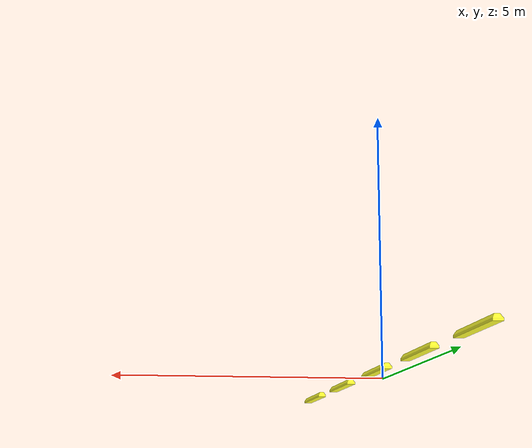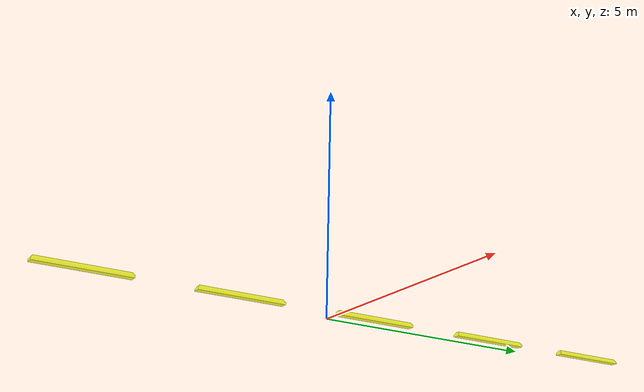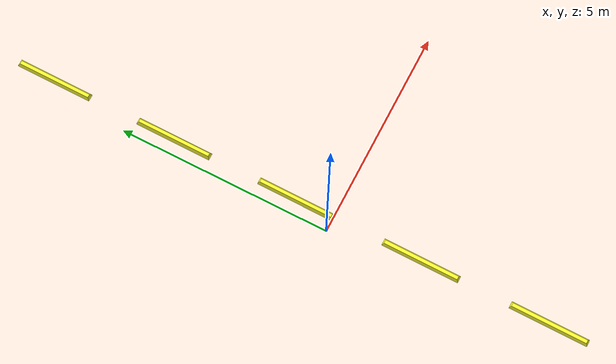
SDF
<?xml version='1.0'?>
<sdf version='1.7'>
  <model name='parking_version_7'>
    <model name='drc_practice_yellow_parking_block'>
      <static>1</static>
      <link name='link'>
        <visual name='visual'>
          <geometry>
            <mesh>
              <uri>model://drc_practice_yellow_parking_block/meshes/block.dae</uri>
            </mesh>
          </geometry>
        </visual>
        <collision name='collision'>
          <geometry>
            <mesh>
              <uri>model://drc_practice_yellow_parking_block/meshes/block.dae</uri>
            </mesh>
          </geometry>
          <max_contacts>10</max_contacts>
          <surface>
            <contact>
              <ode/>
            </contact>
            <bounce/>
            <friction>
              <torsional>
                <ode/>
              </torsional>
              <ode/>
            </friction>
          </surface>
        </collision>
        <self_collide>0</self_collide>
        <enable_wind>0</enable_wind>
        <kinematic>0</kinematic>
      </link>
      <pose>0.346026 -2.08831 0 0 -0 0</pose>
    </model>
    <model name='drc_practice_yellow_parking_block_clone'>
      <static>1</static>
      <link name='link'>
        <visual name='visual'>
          <geometry>
            <mesh>
              <uri>model://drc_practice_yellow_parking_block/meshes/block.dae</uri>
            </mesh>
          </geometry>
        </visual>
        <collision name='collision'>
          <geometry>
            <mesh>
              <uri>model://drc_practice_yellow_parking_block/meshes/block.dae</uri>
            </mesh>
          </geometry>
          <max_contacts>10</max_contacts>
          <surface>
            <contact>
              <ode/>
            </contact>
            <bounce/>
            <friction>
              <torsional>
                <ode/>
              </torsional>
              <ode/>
            </friction>
          </surface>
        </collision>
        <self_collide>0</self_collide>
        <enable_wind>0</enable_wind>
        <kinematic>0</kinematic>
      </link>
      <pose>0.345776 -5.08491 0 0 -0 0</pose>
    </model>
    <model name='drc_practice_yellow_parking_block_clone_clone'>
      <static>1</static>
      <link name='link'>
        <visual name='visual'>
          <geometry>
            <mesh>
              <uri>model://drc_practice_yellow_parking_block/meshes/block.dae</uri>
            </mesh>
          </geometry>
        </visual>
        <collision name='collision'>
          <geometry>
            <mesh>
              <uri>model://drc_practice_yellow_parking_block/meshes/block.dae</uri>
            </mesh>
          </geometry>
          <max_contacts>10</max_contacts>
          <surface>
            <contact>
              <ode/>
            </contact>
            <bounce/>
            <friction>
              <torsional>
                <ode/>
              </torsional>
              <ode/>
            </friction>
          </surface>
        </collision>
        <self_collide>0</self_collide>
        <enable_wind>0</enable_wind>
        <kinematic>0</kinematic>
      </link>
      <pose>0.342782 0.912728 0 0 -0 0</pose>
    </model>
    <model name='drc_practice_yellow_parking_block_clone_clone_0'>
      <static>1</static>
      <link name='link'>
        <visual name='visual'>
          <geometry>
            <mesh>
              <uri>model://drc_practice_yellow_parking_block/meshes/block.dae</uri>
            </mesh>
          </geometry>
        </visual>
        <collision name='collision'>
          <geometry>
            <mesh>
              <uri>model://drc_practice_yellow_parking_block/meshes/block.dae</uri>
            </mesh>
          </geometry>
          <max_contacts>10</max_contacts>
          <surface>
            <contact>
              <ode/>
            </contact>
            <bounce/>
            <friction>
              <torsional>
                <ode/>
              </torsional>
              <ode/>
            </friction>
          </surface>
        </collision>
        <self_collide>0</self_collide>
        <enable_wind>0</enable_wind>
        <kinematic>0</kinematic>
      </link>
      <pose>0.344818 3.90903 0 0 -0 0</pose>
    </model>
    <model name='drc_practice_yellow_parking_block_clone_clone_0_clone'>
      <static>1</static>
      <link name='link'>
        <visual name='visual'>
          <geometry>
            <mesh>
              <uri>model://drc_practice_yellow_parking_block/meshes/block.dae</uri>
            </mesh>
          </geometry>
        </visual>
        <collision name='collision'>
          <geometry>
            <mesh>
              <uri>model://drc_practice_yellow_parking_block/meshes/block.dae</uri>
            </mesh>
          </geometry>
          <max_contacts>10</max_contacts>
          <surface>
            <contact>
              <ode/>
            </contact>
            <bounce/>
            <friction>
              <torsional>
                <ode/>
              </torsional>
              <ode/>
            </friction>
          </surface>
        </collision>
        <self_collide>0</self_collide>
        <enable_wind>0</enable_wind>
        <kinematic>0</kinematic>
      </link>
      <pose>0.336101 6.91064 0 0 -0 0</pose>
    </model>
    <static>1</static>
    <allow_auto_disable>1</allow_auto_disable>
  </model>
</sdf>
